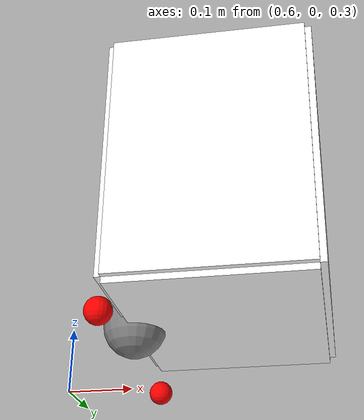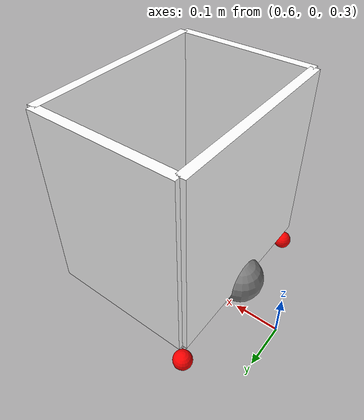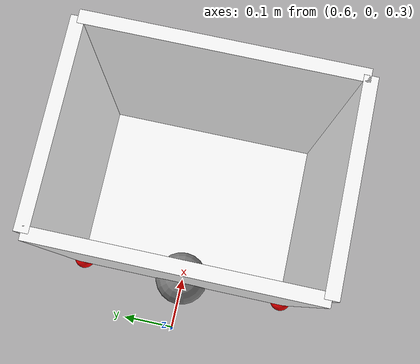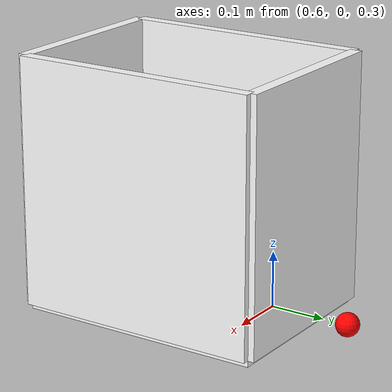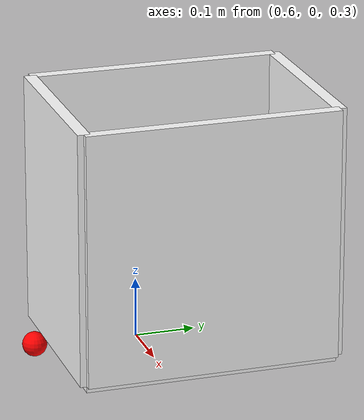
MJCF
<mujoco model="trash_bin">
  <compiler angle="radian" />

  <asset>
    <material name="white_wood" rgba="1 1 1 1" />
  </asset>

  <worldbody>
   <body name="trash_bin" pos="0.7 0.0 0.4">
      <inertial mass="2.0" pos="0.0 0 -0.2" diaginertia="0.0334 0.02167 0.04167"/>

      <freejoint name="trash_bin_root" />
      <site name="trash_bin_root" pos="0 0 0" size="0.05" type="sphere" rgba="0.5 0.5 0.5 1"/>
      <site name="left_hand_contact" pos="0 0.2 -0.05" size="0.02" type="sphere" rgba="1 0 0 1"/>
      <site name="right_hand_contact" pos="0 -0.2 -0.05" size="0.02" type="sphere" rgba="1 0 0 1"/>

      <geom name="bottom" type="box" size="0.15 0.2 0.01" pos="0.15 0 0" material="white_wood"/>

      <geom type="box" name="side1" pos="0       0 0.2" material="white_wood" size="0.01 0.2 0.2"/>
      <geom type="box" name="side2" pos="0.3     0 0.2" material="white_wood" size="0.01 0.2 0.2"/>
      <geom type="box" name="side3" pos="0.15 -0.2 0.2" material="white_wood" size="0.15 0.01 0.2"/>
      <geom type="box" name="side4" pos="0.15  0.2 0.2" material="white_wood" size="0.15 0.01 0.2"/>
    </body>
  </worldbody>

  <sensor>
    <framepos name="trash_bin_pos" objtype="xbody" objname="trash_bin"/>
    <framequat name="trash_bin_quat" objtype="xbody" objname="trash_bin"/>
  </sensor>
</mujoco>
